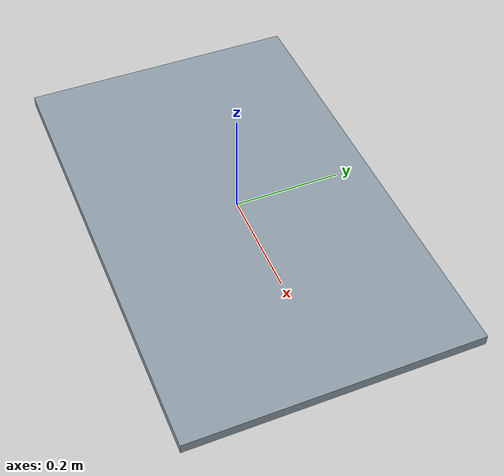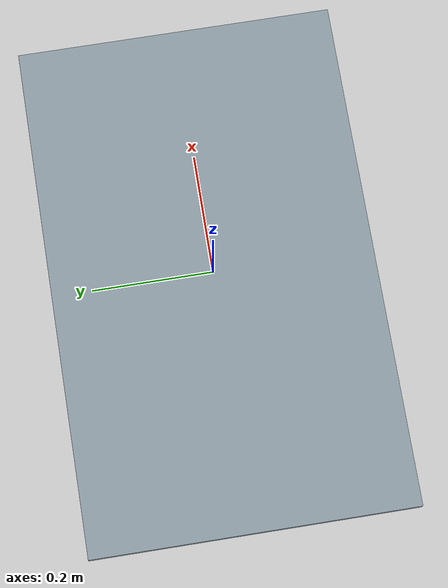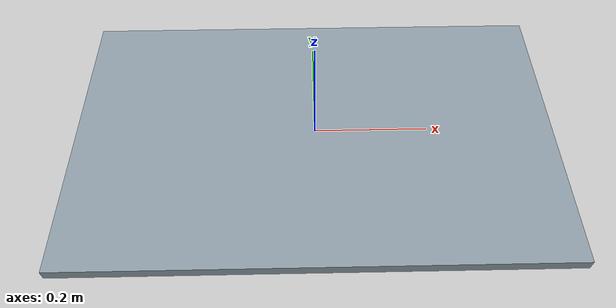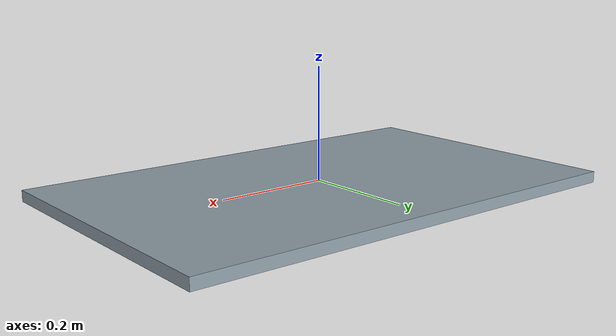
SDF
<?xml version="1.0"?>
<sdf version="1.7">
  <model name="amazon_table">
    <link name="amazon_table">
      <inertial>
        <mass>1</mass>
        <inertia>
          <ixx>1</ixx>
          <ixy>0</ixy>
          <ixz>0</ixz>
          <iyy>1</iyy>
          <iyz>0</iyz>
          <izz>1</izz>
        </inertia>
      </inertial>
      <visual name="tabletop">
        <pose>0 0 -0.01 0 0 0</pose>
        <geometry>
          <box>
            <size>0.854 0.533 0.02</size>
          </box>
        </geometry>
        <material>
          <diffuse>0.57 0.63 0.67 1.0</diffuse>
        </material>
      </visual>
      <collision name="tabletop">
        <pose>0 0 -0.01 0 0 0</pose>
        <geometry>
          <box>
            <size>0.854 0.533 0.02</size>
          </box>
        </geometry>
      </collision>
    </link>
  </model>
</sdf>
